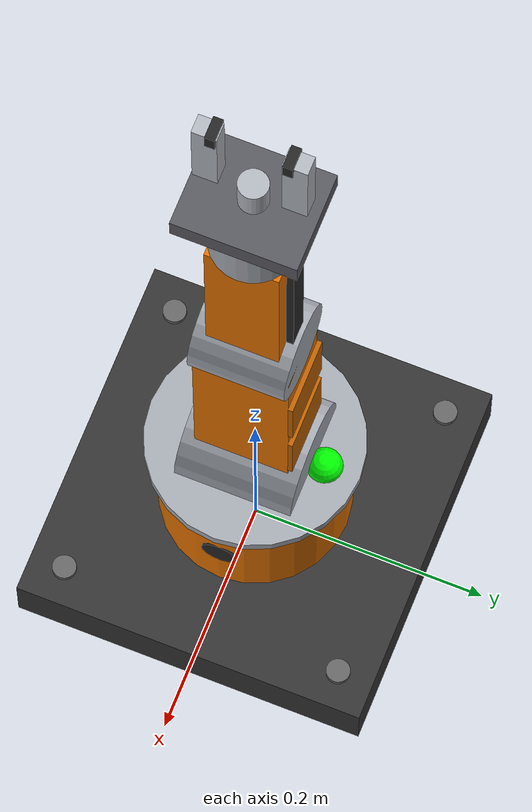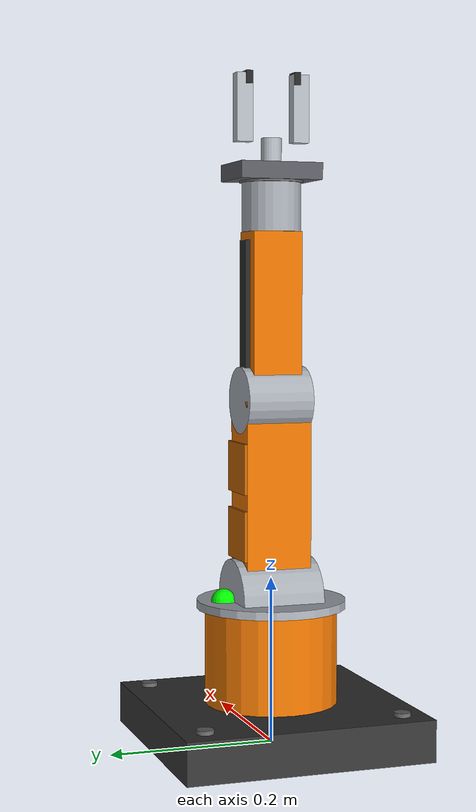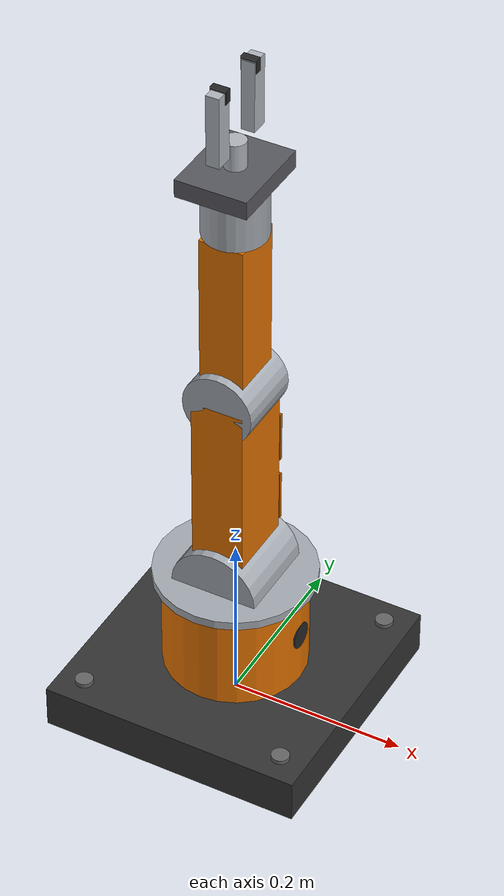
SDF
<?xml version="1.0"?>
<sdf version="1.6">
  <model name="sorting_robot_arm">
    <static>false</static>

    <!-- ==================== BASE PEDESTAL ==================== -->
    <link name="base_link">
      <pose>0 0 0 0 0 0</pose>
      <inertial>
        <mass>15.0</mass>
        <inertia>
          <ixx>0.15</ixx><ixy>0</ixy><ixz>0</ixz>
          <iyy>0.15</iyy><iyz>0</iyz><izz>0.2</izz>
        </inertia>
      </inertial>
      <!-- Main base plate -->
      <collision name="base_collision">
        <pose>0 0 0.025 0 0 0</pose>
        <geometry>
          <box><size>0.30 0.30 0.05</size></box>
        </geometry>
      </collision>
      <visual name="base_visual">
        <pose>0 0 0.025 0 0 0</pose>
        <geometry>
          <box><size>0.30 0.30 0.05</size></box>
        </geometry>
        <material>
          <ambient>0.15 0.15 0.15 1</ambient>
          <diffuse>0.2 0.2 0.2 1</diffuse>
          <specular>0.4 0.4 0.4 1</specular>
        </material>
      </visual>
      <!-- Mounting bolts -->
      <visual name="bolt_fl">
        <pose>0.12 0.12 0.05 0 0 0</pose>
        <geometry><cylinder><radius>0.01</radius><length>0.01</length></cylinder></geometry>
        <material><ambient>0.3 0.3 0.3 1</ambient><diffuse>0.4 0.4 0.4 1</diffuse><specular>0.6 0.6 0.6 1</specular></material>
      </visual>
      <visual name="bolt_fr">
        <pose>0.12 -0.12 0.05 0 0 0</pose>
        <geometry><cylinder><radius>0.01</radius><length>0.01</length></cylinder></geometry>
        <material><ambient>0.3 0.3 0.3 1</ambient><diffuse>0.4 0.4 0.4 1</diffuse><specular>0.6 0.6 0.6 1</specular></material>
      </visual>
      <visual name="bolt_bl">
        <pose>-0.12 0.12 0.05 0 0 0</pose>
        <geometry><cylinder><radius>0.01</radius><length>0.01</length></cylinder></geometry>
        <material><ambient>0.3 0.3 0.3 1</ambient><diffuse>0.4 0.4 0.4 1</diffuse><specular>0.6 0.6 0.6 1</specular></material>
      </visual>
      <visual name="bolt_br">
        <pose>-0.12 -0.12 0.05 0 0 0</pose>
        <geometry><cylinder><radius>0.01</radius><length>0.01</length></cylinder></geometry>
        <material><ambient>0.3 0.3 0.3 1</ambient><diffuse>0.4 0.4 0.4 1</diffuse><specular>0.6 0.6 0.6 1</specular></material>
      </visual>
    </link>

    <!-- ==================== TURRET / ROTATING BASE ==================== -->
    <link name="turret_link">
      <pose>0 0 0.05 0 0 0</pose>
      <inertial>
        <mass>5.0</mass>
        <pose>0 0 0.06 0 0 0</pose>
        <inertia>
          <ixx>0.03</ixx><ixy>0</ixy><ixz>0</ixz>
          <iyy>0.03</iyy><iyz>0</iyz><izz>0.02</izz>
        </inertia>
      </inertial>
      <!-- Turret cylinder -->
      <collision name="turret_collision">
        <pose>0 0 0.06 0 0 0</pose>
        <geometry>
          <cylinder><radius>0.08</radius><length>0.12</length></cylinder>
        </geometry>
      </collision>
      <visual name="turret_visual">
        <pose>0 0 0.06 0 0 0</pose>
        <geometry>
          <cylinder><radius>0.08</radius><length>0.12</length></cylinder>
        </geometry>
        <material>
          <ambient>0.7 0.35 0.0 1</ambient>
          <diffuse>0.9 0.45 0.0 1</diffuse>
          <specular>0.5 0.5 0.5 1</specular>
        </material>
      </visual>
      <!-- Top bearing cover -->
      <visual name="bearing_cover">
        <pose>0 0 0.12 0 0 0</pose>
        <geometry>
          <cylinder><radius>0.09</radius><length>0.01</length></cylinder>
        </geometry>
        <material>
          <ambient>0.55 0.57 0.60 1</ambient>
          <diffuse>0.65 0.67 0.70 1</diffuse>
          <specular>0.8 0.8 0.8 1</specular>
        </material>
      </visual>
      <!-- Cable conduit -->
      <visual name="cable_conduit">
        <pose>0.06 0 0.06 0 1.57 0</pose>
        <geometry>
          <cylinder><radius>0.015</radius><length>0.04</length></cylinder>
        </geometry>
        <material>
          <ambient>0.1 0.1 0.1 1</ambient>
          <diffuse>0.15 0.15 0.15 1</diffuse>
        </material>
      </visual>
    </link>

    <joint name="joint_1" type="revolute">
      <parent>base_link</parent>
      <child>turret_link</child>
      <pose>0 0 0 0 0 0</pose>
      <axis>
        <xyz>0 0 1</xyz>
        <limit>
          <lower>-3.14159</lower>
          <upper>3.14159</upper>
          <effort>100</effort>
          <velocity>1.5</velocity>
        </limit>
        <dynamics>
          <damping>0.5</damping>
          <friction>0.1</friction>
        </dynamics>
      </axis>
    </joint>

    <!-- ==================== SHOULDER / UPPER ARM ==================== -->
    <link name="shoulder_link">
      <pose>0 0 0.175 0 0 0</pose>
      <inertial>
        <mass>3.5</mass>
        <pose>0 0 0.12 0 0 0</pose>
        <inertia>
          <ixx>0.025</ixx><ixy>0</ixy><ixz>0</ixz>
          <iyy>0.025</iyy><iyz>0</iyz><izz>0.008</izz>
        </inertia>
      </inertial>
      <!-- Shoulder motor housing -->
      <visual name="shoulder_motor">
        <pose>0 0 0 1.5708 0 0</pose>
        <geometry>
          <cylinder><radius>0.05</radius><length>0.10</length></cylinder>
        </geometry>
        <material>
          <ambient>0.55 0.57 0.60 1</ambient>
          <diffuse>0.65 0.67 0.70 1</diffuse>
          <specular>0.8 0.8 0.8 1</specular>
        </material>
      </visual>
      <!-- Upper arm segment -->
      <collision name="upper_arm_collision">
        <pose>0 0 0.12 0 0 0</pose>
        <geometry>
          <box><size>0.06 0.08 0.24</size></box>
        </geometry>
      </collision>
      <visual name="upper_arm_visual">
        <pose>0 0 0.12 0 0 0</pose>
        <geometry>
          <box><size>0.06 0.08 0.24</size></box>
        </geometry>
        <material>
          <ambient>0.7 0.35 0.0 1</ambient>
          <diffuse>0.9 0.45 0.0 1</diffuse>
          <specular>0.5 0.5 0.5 1</specular>
        </material>
      </visual>
      <!-- Structural ribs -->
      <visual name="rib_1">
        <pose>0 0.042 0.08 0 0 0</pose>
        <geometry><box><size>0.062 0.004 0.06</size></box></geometry>
        <material><ambient>0.6 0.3 0.0 1</ambient><diffuse>0.75 0.38 0.0 1</diffuse></material>
      </visual>
      <visual name="rib_2">
        <pose>0 0.042 0.16 0 0 0</pose>
        <geometry><box><size>0.062 0.004 0.06</size></box></geometry>
        <material><ambient>0.6 0.3 0.0 1</ambient><diffuse>0.75 0.38 0.0 1</diffuse></material>
      </visual>
    </link>

    <joint name="joint_2" type="revolute">
      <parent>turret_link</parent>
      <child>shoulder_link</child>
      <pose>0 0 -0.05 0 0 0</pose>
      <axis>
        <xyz>0 1 0</xyz>
        <limit>
          <lower>-1.57</lower>
          <upper>1.57</upper>
          <effort>80</effort>
          <velocity>1.2</velocity>
        </limit>
        <dynamics>
          <damping>0.4</damping>
          <friction>0.1</friction>
        </dynamics>
      </axis>
    </joint>

    <!-- ==================== ELBOW / FOREARM ==================== -->
    <link name="elbow_link">
      <pose>0 0 0.415 0 0 0</pose>
      <inertial>
        <mass>2.5</mass>
        <pose>0 0 0.10 0 0 0</pose>
        <inertia>
          <ixx>0.015</ixx><ixy>0</ixy><ixz>0</ixz>
          <iyy>0.015</iyy><iyz>0</iyz><izz>0.005</izz>
        </inertia>
      </inertial>
      <!-- Elbow motor housing -->
      <visual name="elbow_motor">
        <pose>0 0 0 1.5708 0 0</pose>
        <geometry>
          <cylinder><radius>0.04</radius><length>0.08</length></cylinder>
        </geometry>
        <material>
          <ambient>0.55 0.57 0.60 1</ambient>
          <diffuse>0.65 0.67 0.70 1</diffuse>
          <specular>0.8 0.8 0.8 1</specular>
        </material>
      </visual>
      <!-- Forearm segment -->
      <collision name="forearm_collision">
        <pose>0 0 0.10 0 0 0</pose>
        <geometry>
          <box><size>0.05 0.06 0.20</size></box>
        </geometry>
      </collision>
      <visual name="forearm_visual">
        <pose>0 0 0.10 0 0 0</pose>
        <geometry>
          <box><size>0.05 0.06 0.20</size></box>
        </geometry>
        <material>
          <ambient>0.7 0.35 0.0 1</ambient>
          <diffuse>0.9 0.45 0.0 1</diffuse>
          <specular>0.5 0.5 0.5 1</specular>
        </material>
      </visual>
      <!-- Cable harness -->
      <visual name="cable_harness">
        <pose>0 0.032 0.10 0 0 0</pose>
        <geometry>
          <box><size>0.02 0.008 0.18</size></box>
        </geometry>
        <material>
          <ambient>0.1 0.1 0.1 1</ambient>
          <diffuse>0.15 0.15 0.15 1</diffuse>
        </material>
      </visual>
    </link>

    <joint name="joint_3" type="revolute">
      <parent>shoulder_link</parent>
      <child>elbow_link</child>
      <pose>0 0 0 0 0 0</pose>
      <axis>
        <xyz>0 1 0</xyz>
        <limit>
          <lower>-2.35</lower>
          <upper>2.35</upper>
          <effort>60</effort>
          <velocity>1.5</velocity>
        </limit>
        <dynamics>
          <damping>0.3</damping>
          <friction>0.08</friction>
        </dynamics>
      </axis>
    </joint>

    <!-- ==================== WRIST ==================== -->
    <link name="wrist_link">
      <pose>0 0 0.615 0 0 0</pose>
      <inertial>
        <mass>1.0</mass>
        <pose>0 0 0.03 0 0 0</pose>
        <inertia>
          <ixx>0.003</ixx><ixy>0</ixy><ixz>0</ixz>
          <iyy>0.003</iyy><iyz>0</iyz><izz>0.002</izz>
        </inertia>
      </inertial>
      <!-- Wrist rotation mechanism -->
      <collision name="wrist_collision">
        <pose>0 0 0.03 0 0 0</pose>
        <geometry>
          <cylinder><radius>0.035</radius><length>0.06</length></cylinder>
        </geometry>
      </collision>
      <visual name="wrist_visual">
        <pose>0 0 0.03 0 0 0</pose>
        <geometry>
          <cylinder><radius>0.035</radius><length>0.06</length></cylinder>
        </geometry>
        <material>
          <ambient>0.55 0.57 0.60 1</ambient>
          <diffuse>0.65 0.67 0.70 1</diffuse>
          <specular>0.8 0.8 0.8 1</specular>
        </material>
      </visual>
      <!-- Bearing ring -->
      <visual name="wrist_ring">
        <pose>0 0 0.06 0 0 0</pose>
        <geometry>
          <cylinder><radius>0.038</radius><length>0.005</length></cylinder>
        </geometry>
        <material>
          <ambient>0.3 0.3 0.3 1</ambient>
          <diffuse>0.4 0.4 0.4 1</diffuse>
          <specular>0.7 0.7 0.7 1</specular>
        </material>
      </visual>
    </link>

    <joint name="joint_4" type="revolute">
      <parent>elbow_link</parent>
      <child>wrist_link</child>
      <pose>0 0 0 0 0 0</pose>
      <axis>
        <xyz>0 0 1</xyz>
        <limit>
          <lower>-3.14159</lower>
          <upper>3.14159</upper>
          <effort>30</effort>
          <velocity>2.0</velocity>
        </limit>
        <dynamics>
          <damping>0.2</damping>
          <friction>0.05</friction>
        </dynamics>
      </axis>
    </joint>

    <!-- ==================== GRIPPER BASE ==================== -->
    <link name="gripper_base">
      <pose>0 0 0.685 0 0 0</pose>
      <inertial>
        <mass>0.5</mass>
        <inertia>
          <ixx>0.001</ixx><ixy>0</ixy><ixz>0</ixz>
          <iyy>0.001</iyy><iyz>0</iyz><izz>0.001</izz>
        </inertia>
      </inertial>
      <!-- Gripper mounting plate -->
      <collision name="gripper_base_collision">
        <geometry>
          <box><size>0.08 0.10 0.02</size></box>
        </geometry>
      </collision>
      <visual name="gripper_base_visual">
        <geometry>
          <box><size>0.08 0.10 0.02</size></box>
        </geometry>
        <material>
          <ambient>0.25 0.25 0.28 1</ambient>
          <diffuse>0.35 0.35 0.38 1</diffuse>
          <specular>0.5 0.5 0.5 1</specular>
        </material>
      </visual>
      <!-- Pneumatic actuator (visual) -->
      <visual name="pneumatic_cylinder">
        <pose>0 0 0.025 0 0 0</pose>
        <geometry>
          <cylinder><radius>0.012</radius><length>0.03</length></cylinder>
        </geometry>
        <material>
          <ambient>0.55 0.57 0.60 1</ambient>
          <diffuse>0.7 0.72 0.75 1</diffuse>
          <specular>0.8 0.8 0.8 1</specular>
        </material>
      </visual>
    </link>

    <joint name="wrist_to_gripper" type="fixed">
      <parent>wrist_link</parent>
      <child>gripper_base</child>
      <pose>0 0 -0.02 0 0 0</pose>
    </joint>

    <!-- ==================== LEFT FINGER ==================== -->
    <link name="finger_left">
      <pose>0 0.035 0.72 0 0 0</pose>
      <inertial>
        <mass>0.1</mass>
        <inertia>
          <ixx>0.0001</ixx><ixy>0</ixy><ixz>0</ixz>
          <iyy>0.0001</iyy><iyz>0</iyz><izz>0.00005</izz>
        </inertia>
      </inertial>
      <!-- Finger body -->
      <collision name="finger_left_collision">
        <pose>0 0 0.04 0 0 0</pose>
        <geometry>
          <box><size>0.015 0.02 0.08</size></box>
        </geometry>
        <surface>
          <friction>
            <ode><mu>1.5</mu><mu2>1.5</mu2></ode>
          </friction>
        </surface>
      </collision>
      <visual name="finger_left_visual">
        <pose>0 0 0.04 0 0 0</pose>
        <geometry>
          <box><size>0.015 0.02 0.08</size></box>
        </geometry>
        <material>
          <ambient>0.55 0.57 0.60 1</ambient>
          <diffuse>0.7 0.72 0.75 1</diffuse>
          <specular>0.8 0.8 0.8 1</specular>
        </material>
      </visual>
      <!-- Finger tip (rubber pad) -->
      <collision name="tip_left_collision">
        <pose>0 -0.005 0.075 0 0 0</pose>
        <geometry>
          <box><size>0.018 0.008 0.015</size></box>
        </geometry>
        <surface>
          <friction>
            <ode><mu>2.0</mu><mu2>2.0</mu2></ode>
          </friction>
        </surface>
      </collision>
      <visual name="tip_left_visual">
        <pose>0 -0.005 0.075 0 0 0</pose>
        <geometry>
          <box><size>0.018 0.008 0.015</size></box>
        </geometry>
        <material>
          <ambient>0.1 0.1 0.1 1</ambient>
          <diffuse>0.15 0.15 0.15 1</diffuse>
        </material>
      </visual>
    </link>

    <joint name="finger_left_joint" type="prismatic">
      <parent>gripper_base</parent>
      <child>finger_left</child>
      <pose>0 0 0 0 0 0</pose>
      <axis>
        <xyz>0 1 0</xyz>
        <limit>
          <lower>-0.01</lower>
          <upper>0.025</upper>
          <effort>20</effort>
          <velocity>0.5</velocity>
        </limit>
        <dynamics>
          <damping>0.1</damping>
          <friction>0.02</friction>
        </dynamics>
      </axis>
    </joint>

    <!-- ==================== RIGHT FINGER ==================== -->
    <link name="finger_right">
      <pose>0 -0.035 0.72 0 0 0</pose>
      <inertial>
        <mass>0.1</mass>
        <inertia>
          <ixx>0.0001</ixx><ixy>0</ixy><ixz>0</ixz>
          <iyy>0.0001</iyy><iyz>0</iyz><izz>0.00005</izz>
        </inertia>
      </inertial>
      <!-- Finger body -->
      <collision name="finger_right_collision">
        <pose>0 0 0.04 0 0 0</pose>
        <geometry>
          <box><size>0.015 0.02 0.08</size></box>
        </geometry>
        <surface>
          <friction>
            <ode><mu>1.5</mu><mu2>1.5</mu2></ode>
          </friction>
        </surface>
      </collision>
      <visual name="finger_right_visual">
        <pose>0 0 0.04 0 0 0</pose>
        <geometry>
          <box><size>0.015 0.02 0.08</size></box>
        </geometry>
        <material>
          <ambient>0.55 0.57 0.60 1</ambient>
          <diffuse>0.7 0.72 0.75 1</diffuse>
          <specular>0.8 0.8 0.8 1</specular>
        </material>
      </visual>
      <!-- Finger tip (rubber pad) -->
      <collision name="tip_right_collision">
        <pose>0 0.005 0.075 0 0 0</pose>
        <geometry>
          <box><size>0.018 0.008 0.015</size></box>
        </geometry>
        <surface>
          <friction>
            <ode><mu>2.0</mu><mu2>2.0</mu2></ode>
          </friction>
        </surface>
      </collision>
      <visual name="tip_right_visual">
        <pose>0 0.005 0.075 0 0 0</pose>
        <geometry>
          <box><size>0.018 0.008 0.015</size></box>
        </geometry>
        <material>
          <ambient>0.1 0.1 0.1 1</ambient>
          <diffuse>0.15 0.15 0.15 1</diffuse>
        </material>
      </visual>
    </link>

    <joint name="finger_right_joint" type="prismatic">
      <parent>gripper_base</parent>
      <child>finger_right</child>
      <pose>0 0 0 0 0 0</pose>
      <axis>
        <xyz>0 -1 0</xyz>
        <limit>
          <lower>-0.01</lower>
          <upper>0.025</upper>
          <effort>20</effort>
          <velocity>0.5</velocity>
        </limit>
        <dynamics>
          <damping>0.1</damping>
          <friction>0.02</friction>
        </dynamics>
      </axis>
    </joint>

    <!-- ==================== STATUS INDICATOR LIGHT ==================== -->
    <link name="status_light">
      <pose>0 0.06 0.175 0 0 0</pose>
      <visual name="light_housing">
        <geometry>
          <sphere><radius>0.015</radius></sphere>
        </geometry>
        <material>
          <ambient>0.0 0.8 0.0 1</ambient>
          <diffuse>0.0 1.0 0.0 1</diffuse>
          <specular>0.3 0.3 0.3 1</specular>
          <emissive>0.0 0.4 0.0 1</emissive>
        </material>
      </visual>
    </link>

    <joint name="turret_to_light" type="fixed">
      <parent>turret_link</parent>
      <child>status_light</child>
    </joint>

    <!-- ==================== ROS2 JOINT CONTROL PLUGINS ==================== -->
    <!-- Joint state publisher -->
    <plugin name="joint_state_publisher" filename="libgazebo_ros_joint_state_publisher.so">
      <ros>
        <namespace>/sorting_robot_arm</namespace>
        <remapping>joint_states:=joint_states</remapping>
      </ros>
      <update_rate>50</update_rate>
      <joint_name>joint_1</joint_name>
      <joint_name>joint_2</joint_name>
      <joint_name>joint_3</joint_name>
      <joint_name>joint_4</joint_name>
      <joint_name>finger_left_joint</joint_name>
      <joint_name>finger_right_joint</joint_name>
    </plugin>

    <!-- Joint pose trajectory plugin - Kinematic control of joints -->
    <plugin name="joint_pose_trajectory" filename="libgazebo_ros_joint_pose_trajectory.so">
      <ros>
        <namespace>/sorting_robot_arm</namespace>
        <remapping>set_joint_trajectory:=set_joint_trajectory</remapping>
      </ros>
      <update_rate>50</update_rate>
    </plugin>

  </model>
</sdf>
